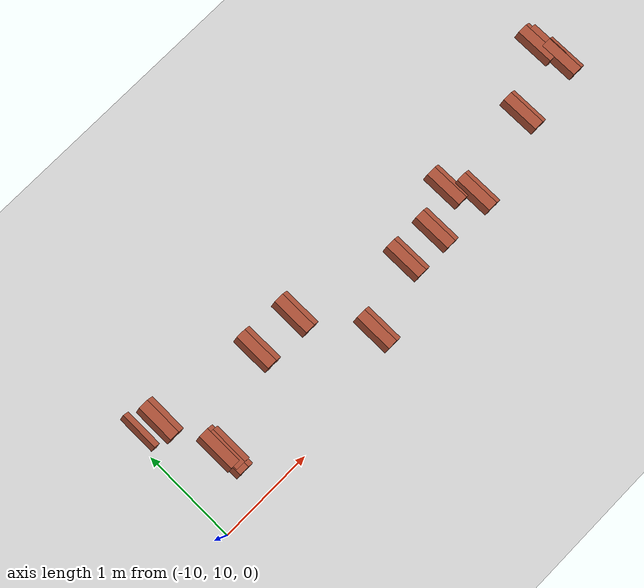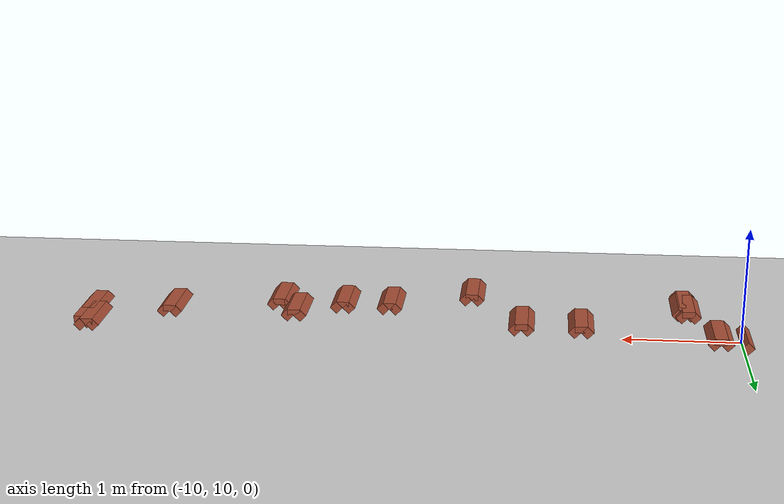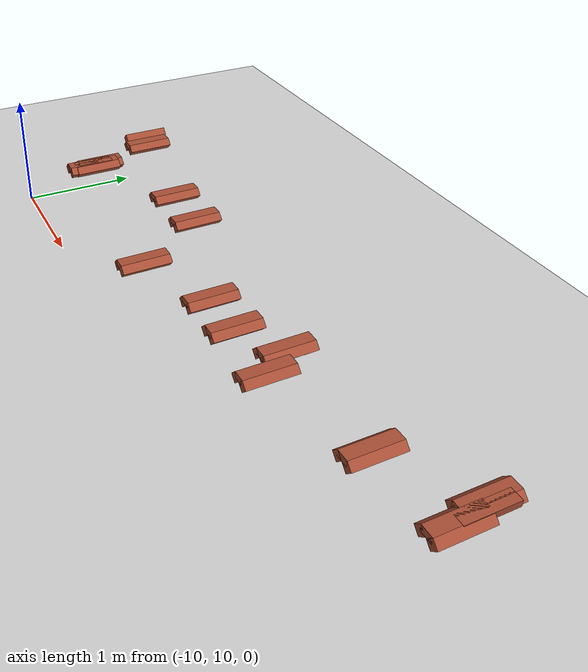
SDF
<sdf version="1.7">
 <world name="default">
  <model name="ground_plane">
   <static>1</static>
   <link name="link">
    <collision name="collision">
     <geometry><plane><normal>0 0 1</normal><size>100 100</size></plane></geometry>
     <surface><friction><ode><mu>100</mu><mu2>50</mu2></ode></friction></surface>
    </collision>
    <visual name="visual">
     <cast_shadows>0</cast_shadows>
     <geometry><plane><normal>0 0 1</normal><size>100 100</size></plane></geometry>
     <material>
      <script><uri>file://media/materials/scripts/gazebo.material</uri><name>Gazebo/Grey</name></script>
     </material>
    </visual>
   </link>
  </model>
  <model name="tumsek">
   <static>1</static>
   <pose>-5.17447 11.4027 0.5 0 -0 0</pose>
   <link name="tumsek_main_0">
    <pose>0.442808 -0.537221 0 0 -0 0</pose>
    <collision name="tumsek_Collision">
     <geometry><box><size>0.1 0.4 0.05</size></box></geometry>
     <pose>0 0 0.025 0 -0 0</pose>
    </collision>
    <visual name="tumsek_Visual">
     <pose>0 0 0.025 0 -0 0</pose>
     <geometry><box><size>0.1 0.4 0.05</size></box></geometry>
     <material>
      <script><uri>file://media/materials/scripts/gazebo.material</uri><name>Gazebo/Bricks</name></script>
      <ambient>1 1 1 1</ambient>
     </material>
     <meta><layer>0</layer></meta>
    </visual>
   </link>
   <link name="tumsek_front_0">
    <pose>0.492808 -0.537221 0 0 0.785 0</pose>
    <collision name="tumsek_Collision"><geometry><box><size>0.0707 0.4 0.0707</size></box></geometry></collision>
    <visual name="tumsek_Visual">
     <geometry><box><size>0.0707 0.4 0.0707</size></box></geometry>
     <material>
      <script><uri>file://media/materials/scripts/gazebo.material</uri><name>Gazebo/Bricks</name></script>
      <ambient>1 1 1 1</ambient>
     </material>
    </visual>
   </link>
   <link name="tumsek_back_0">
    <pose>0.392808 -0.537221 0 0 0.785 0</pose>
    <collision name="tumsek_Collision"><geometry><box><size>0.0707 0.4 0.0707</size></box></geometry></collision>
    <visual name="tumsek_Visual">
     <geometry><box><size>0.0707 0.4 0.0707</size></box></geometry>
     <material>
      <script><uri>file://media/materials/scripts/gazebo.material</uri><name>Gazebo/Bricks</name></script>
      <ambient>1 1 1 1</ambient>
     </material>
    </visual>
   </link>
   <link name="tumsek_main_1">
    <pose>-0.18536 -0.64129 0 0 -0 0</pose>
    <collision name="tumsek_Collision">
     <geometry><box><size>0.1 0.4 0.05</size></box></geometry>
     <pose>0 0 0.025 0 -0 0</pose>
    </collision>
    <visual name="tumsek_Visual">
     <pose>0 0 0.025 0 -0 0</pose>
     <geometry><box><size>0.1 0.4 0.05</size></box></geometry>
     <material>
      <script><uri>file://media/materials/scripts/gazebo.material</uri><name>Gazebo/Bricks</name></script>
      <ambient>1 1 1 1</ambient>
     </material>
     <meta><layer>0</layer></meta>
    </visual>
   </link>
   <link name="tumsek_front_1">
    <pose>-0.13536 -0.64129 0 0 0.785 0</pose>
    <collision name="tumsek_Collision"><geometry><box><size>0.0707 0.4 0.0707</size></box></geometry></collision>
    <visual name="tumsek_Visual">
     <geometry><box><size>0.0707 0.4 0.0707</size></box></geometry>
     <material>
      <script><uri>file://media/materials/scripts/gazebo.material</uri><name>Gazebo/Bricks</name></script>
      <ambient>1 1 1 1</ambient>
     </material>
    </visual>
   </link>
   <link name="tumsek_back_1">
    <pose>-0.23536 -0.64129 0 0 0.785 0</pose>
    <collision name="tumsek_Collision"><geometry><box><size>0.0707 0.4 0.0707</size></box></geometry></collision>
    <visual name="tumsek_Visual">
     <geometry><box><size>0.0707 0.4 0.0707</size></box></geometry>
     <material>
      <script><uri>file://media/materials/scripts/gazebo.material</uri><name>Gazebo/Bricks</name></script>
      <ambient>1 1 1 1</ambient>
     </material>
    </visual>
   </link>
   <link name="tumsek_main_3">
    <pose>-2.98653 -0.469523 0 0 -0 0</pose>
    <collision name="tumsek_Collision">
     <geometry><box><size>0.1 0.4 0.05</size></box></geometry>
     <pose>0 0 0.025 0 -0 0</pose>
    </collision>
    <visual name="tumsek_Visual">
     <pose>0 0 0.025 0 -0 0</pose>
     <geometry><box><size>0.1 0.4 0.05</size></box></geometry>
     <material>
      <script><uri>file://media/materials/scripts/gazebo.material</uri><name>Gazebo/Bricks</name></script>
      <ambient>1 1 1 1</ambient>
     </material>
     <meta><layer>0</layer></meta>
    </visual>
   </link>
   <link name="tumsek_front_3">
    <pose>-2.93654 -0.469523 0 0 0.785 0</pose>
    <collision name="tumsek_Collision"><geometry><box><size>0.0707 0.4 0.0707</size></box></geometry></collision>
    <visual name="tumsek_Visual">
     <geometry><box><size>0.0707 0.4 0.0707</size></box></geometry>
     <material>
      <script><uri>file://media/materials/scripts/gazebo.material</uri><name>Gazebo/Bricks</name></script>
      <ambient>1 1 1 1</ambient>
     </material>
    </visual>
   </link>
   <link name="tumsek_back_3">
    <pose>-3.03654 -0.469523 0 0 0.785 0</pose>
    <collision name="tumsek_Collision"><geometry><box><size>0.0707 0.4 0.0707</size></box></geometry></collision>
    <visual name="tumsek_Visual">
     <geometry><box><size>0.0707 0.4 0.0707</size></box></geometry>
     <material>
      <script><uri>file://media/materials/scripts/gazebo.material</uri><name>Gazebo/Bricks</name></script>
      <ambient>1 1 1 1</ambient>
     </material>
    </visual>
   </link>
   <link name="tumsek_main_18">
    <pose>-1.54985 -0.834055 0 0 -0 0</pose>
    <collision name="tumsek_Collision">
     <geometry><box><size>0.1 0.4 0.05</size></box></geometry>
     <pose>0 0 0.025 0 -0 0</pose>
    </collision>
    <visual name="tumsek_Visual">
     <pose>0 0 0.025 0 -0 0</pose>
     <geometry><box><size>0.1 0.4 0.05</size></box></geometry>
     <material>
      <script><uri>file://media/materials/scripts/gazebo.material</uri><name>Gazebo/Bricks</name></script>
      <ambient>1 1 1 1</ambient>
     </material>
     <meta><layer>0</layer></meta>
    </visual>
   </link>
   <link name="tumsek_front_18">
    <pose>-1.49985 -0.834055 0 0 0.785 0</pose>
    <collision name="tumsek_Collision"><geometry><box><size>0.0707 0.4 0.0707</size></box></geometry></collision>
    <visual name="tumsek_Visual">
     <geometry><box><size>0.0707 0.4 0.0707</size></box></geometry>
     <material>
      <script><uri>file://media/materials/scripts/gazebo.material</uri><name>Gazebo/Bricks</name></script>
      <ambient>1 1 1 1</ambient>
     </material>
    </visual>
   </link>
   <link name="tumsek_back_18">
    <pose>-1.59985 -0.834055 0 0 0.785 0</pose>
    <collision name="tumsek_Collision"><geometry><box><size>0.0707 0.4 0.0707</size></box></geometry></collision>
    <visual name="tumsek_Visual">
     <geometry><box><size>0.0707 0.4 0.0707</size></box></geometry>
     <material>
      <script><uri>file://media/materials/scripts/gazebo.material</uri><name>Gazebo/Bricks</name></script>
      <ambient>1 1 1 1</ambient>
     </material>
    </visual>
   </link>
   <link name="tumsek_main_29">
    <pose>-4.29326 -0.845961 0 0 -0 0</pose>
    <collision name="tumsek_Collision">
     <geometry><box><size>0.1 0.4 0.05</size></box></geometry>
     <pose>0 0 0.025 0 -0 0</pose>
    </collision>
    <visual name="tumsek_Visual">
     <pose>0 0 0.025 0 -0 0</pose>
     <geometry><box><size>0.1 0.4 0.05</size></box></geometry>
     <material>
      <script><uri>file://media/materials/scripts/gazebo.material</uri><name>Gazebo/Bricks</name></script>
      <ambient>1 1 1 1</ambient>
     </material>
     <meta><layer>0</layer></meta>
    </visual>
   </link>
   <link name="tumsek_front_29">
    <pose>-4.24326 -0.845961 0 0 0.785 0</pose>
    <collision name="tumsek_Collision"><geometry><box><size>0.0707 0.4 0.0707</size></box></geometry></collision>
    <visual name="tumsek_Visual">
     <geometry><box><size>0.0707 0.4 0.0707</size></box></geometry>
     <material>
      <script><uri>file://media/materials/scripts/gazebo.material</uri><name>Gazebo/Bricks</name></script>
      <ambient>1 1 1 1</ambient>
     </material>
    </visual>
   </link>
   <link name="tumsek_back_29">
    <pose>-4.34326 -0.845961 0 0 0.785 0</pose>
    <collision name="tumsek_Collision"><geometry><box><size>0.0707 0.4 0.0707</size></box></geometry></collision>
    <visual name="tumsek_Visual">
     <geometry><box><size>0.0707 0.4 0.0707</size></box></geometry>
     <material>
      <script><uri>file://media/materials/scripts/gazebo.material</uri><name>Gazebo/Bricks</name></script>
      <ambient>1 1 1 1</ambient>
     </material>
    </visual>
   </link>
   <link name="tumsek_main_30">
    <pose>-4.49216 -0.289121 0 0 -0 0</pose>
    <collision name="tumsek_Collision">
     <geometry><box><size>0.1 0.4 0.05</size></box></geometry>
     <pose>0 0 0.025 0 -0 0</pose>
    </collision>
    <visual name="tumsek_Visual">
     <pose>0 0 0.025 0 -0 0</pose>
     <geometry><box><size>0.1 0.4 0.05</size></box></geometry>
     <material>
      <script><uri>file://media/materials/scripts/gazebo.material</uri><name>Gazebo/Bricks</name></script>
      <ambient>1 1 1 1</ambient>
     </material>
     <meta><layer>0</layer></meta>
    </visual>
   </link>
   <link name="tumsek_front_30">
    <pose>-4.44216 -0.289121 0 0 0.785 0</pose>
    <collision name="tumsek_Collision"><geometry><box><size>0.0707 0.4 0.0707</size></box></geometry></collision>
    <visual name="tumsek_Visual">
     <geometry><box><size>0.0707 0.4 0.0707</size></box></geometry>
     <material>
      <script><uri>file://media/materials/scripts/gazebo.material</uri><name>Gazebo/Bricks</name></script>
      <ambient>1 1 1 1</ambient>
     </material>
    </visual>
   </link>
   <link name="tumsek_back_30">
    <pose>-4.54216 -0.289121 0 0 0.785 0</pose>
    <collision name="tumsek_Collision"><geometry><box><size>0.0707 0.4 0.0707</size></box></geometry></collision>
    <visual name="tumsek_Visual">
     <geometry><box><size>0.0707 0.4 0.0707</size></box></geometry>
     <material>
      <script><uri>file://media/materials/scripts/gazebo.material</uri><name>Gazebo/Bricks</name></script>
      <ambient>1 1 1 1</ambient>
     </material>
    </visual>
   </link>
   <link name="tumsek_main_31">
    <pose>-3.44699 -0.454906 0 0 -0 0</pose>
    <collision name="tumsek_Collision">
     <geometry><box><size>0.1 0.4 0.05</size></box></geometry>
     <pose>0 0 0.025 0 -0 0</pose>
    </collision>
    <visual name="tumsek_Visual">
     <pose>0 0 0.025 0 -0 0</pose>
     <geometry><box><size>0.1 0.4 0.05</size></box></geometry>
     <material>
      <script><uri>file://media/materials/scripts/gazebo.material</uri><name>Gazebo/Bricks</name></script>
      <ambient>1 1 1 1</ambient>
     </material>
     <meta><layer>0</layer></meta>
    </visual>
   </link>
   <link name="tumsek_front_31">
    <pose>-3.39699 -0.454906 0 0 0.785 0</pose>
    <collision name="tumsek_Collision"><geometry><box><size>0.0707 0.4 0.0707</size></box></geometry></collision>
    <visual name="tumsek_Visual">
     <geometry><box><size>0.0707 0.4 0.0707</size></box></geometry>
     <material>
      <script><uri>file://media/materials/scripts/gazebo.material</uri><name>Gazebo/Bricks</name></script>
      <ambient>1 1 1 1</ambient>
     </material>
    </visual>
   </link>
   <link name="tumsek_back_31">
    <pose>-3.49699 -0.454906 0 0 0.785 0</pose>
    <collision name="tumsek_Collision"><geometry><box><size>0.0707 0.4 0.0707</size></box></geometry></collision>
    <visual name="tumsek_Visual">
     <geometry><box><size>0.0707 0.4 0.0707</size></box></geometry>
     <material>
      <script><uri>file://media/materials/scripts/gazebo.material</uri><name>Gazebo/Bricks</name></script>
      <ambient>1 1 1 1</ambient>
     </material>
    </visual>
   </link>
   <link name="tumsek_back_36">
    <pose>-4.68445 -0.23491 0 0 0.785 0</pose>
    <collision name="tumsek_Collision"><geometry><box><size>0.0707 0.4 0.0707</size></box></geometry></collision>
    <visual name="tumsek_Visual">
     <geometry><box><size>0.0707 0.4 0.0707</size></box></geometry>
     <material>
      <script><uri>file://media/materials/scripts/gazebo.material</uri><name>Gazebo/Bricks</name></script>
      <ambient>1 1 1 1</ambient>
     </material>
    </visual>
   </link>
   <link name="tumsek_main_37">
    <pose>-1.18744 -0.629892 0 0 -0 0</pose>
    <collision name="tumsek_Collision">
     <geometry><box><size>0.1 0.4 0.05</size></box></geometry>
     <pose>0 0 0.025 0 -0 0</pose>
    </collision>
    <visual name="tumsek_Visual">
     <pose>0 0 0.025 0 -0 0</pose>
     <geometry><box><size>0.1 0.4 0.05</size></box></geometry>
     <material>
      <script><uri>file://media/materials/scripts/gazebo.material</uri><name>Gazebo/Bricks</name></script>
      <ambient>1 1 1 1</ambient>
     </material>
     <meta><layer>0</layer></meta>
    </visual>
   </link>
   <link name="tumsek_front_37">
    <pose>-1.13744 -0.629892 0 0 0.785 0</pose>
    <collision name="tumsek_Collision"><geometry><box><size>0.0707 0.4 0.0707</size></box></geometry></collision>
    <visual name="tumsek_Visual">
     <geometry><box><size>0.0707 0.4 0.0707</size></box></geometry>
     <material>
      <script><uri>file://media/materials/scripts/gazebo.material</uri><name>Gazebo/Bricks</name></script>
      <ambient>1 1 1 1</ambient>
     </material>
    </visual>
   </link>
   <link name="tumsek_back_37">
    <pose>-1.23744 -0.629892 0 0 0.785 0</pose>
    <collision name="tumsek_Collision"><geometry><box><size>0.0707 0.4 0.0707</size></box></geometry></collision>
    <visual name="tumsek_Visual">
     <geometry><box><size>0.0707 0.4 0.0707</size></box></geometry>
     <material>
      <script><uri>file://media/materials/scripts/gazebo.material</uri><name>Gazebo/Bricks</name></script>
      <ambient>1 1 1 1</ambient>
     </material>
    </visual>
   </link>
   <link name="tumsek_main_38">
    <pose>-1.9263 -0.833267 0 0 -0 0</pose>
    <collision name="tumsek_Collision">
     <geometry><box><size>0.1 0.4 0.05</size></box></geometry>
     <pose>0 0 0.025 0 -0 0</pose>
    </collision>
    <visual name="tumsek_Visual">
     <pose>0 0 0.025 0 -0 0</pose>
     <geometry><box><size>0.1 0.4 0.05</size></box></geometry>
     <material>
      <script><uri>file://media/materials/scripts/gazebo.material</uri><name>Gazebo/Bricks</name></script>
      <ambient>1 1 1 1</ambient>
     </material>
     <meta><layer>0</layer></meta>
    </visual>
   </link>
   <link name="tumsek_front_38">
    <pose>-1.8763 -0.833267 0 0 0.785 0</pose>
    <collision name="tumsek_Collision"><geometry><box><size>0.0707 0.4 0.0707</size></box></geometry></collision>
    <visual name="tumsek_Visual">
     <geometry><box><size>0.0707 0.4 0.0707</size></box></geometry>
     <material>
      <script><uri>file://media/materials/scripts/gazebo.material</uri><name>Gazebo/Bricks</name></script>
      <ambient>1 1 1 1</ambient>
     </material>
    </visual>
   </link>
   <link name="tumsek_back_38">
    <pose>-1.9763 -0.833267 0 0 0.785 0</pose>
    <collision name="tumsek_Collision"><geometry><box><size>0.0707 0.4 0.0707</size></box></geometry></collision>
    <visual name="tumsek_Visual">
     <geometry><box><size>0.0707 0.4 0.0707</size></box></geometry>
     <material>
      <script><uri>file://media/materials/scripts/gazebo.material</uri><name>Gazebo/Bricks</name></script>
      <ambient>1 1 1 1</ambient>
     </material>
    </visual>
   </link>
   <link name="tumsek_main_42">
    <pose>-4.27675 -0.941317 0 0 -0 0</pose>
    <collision name="tumsek_Collision">
     <geometry><box><size>0.1 0.4 0.05</size></box></geometry>
     <pose>0 0 0.025 0 -0 0</pose>
    </collision>
    <visual name="tumsek_Visual">
     <pose>0 0 0.025 0 -0 0</pose>
     <geometry><box><size>0.1 0.4 0.05</size></box></geometry>
     <material>
      <script><uri>file://media/materials/scripts/gazebo.material</uri><name>Gazebo/Bricks</name></script>
      <ambient>1 1 1 1</ambient>
     </material>
     <meta><layer>0</layer></meta>
    </visual>
   </link>
   <link name="tumsek_front_42">
    <pose>-4.22675 -0.941317 0 0 0.785 0</pose>
    <collision name="tumsek_Collision"><geometry><box><size>0.0707 0.4 0.0707</size></box></geometry></collision>
    <visual name="tumsek_Visual">
     <geometry><box><size>0.0707 0.4 0.0707</size></box></geometry>
     <material>
      <script><uri>file://media/materials/scripts/gazebo.material</uri><name>Gazebo/Bricks</name></script>
      <ambient>1 1 1 1</ambient>
     </material>
    </visual>
   </link>
   <link name="tumsek_back_42">
    <pose>-4.32674 -0.941317 0 0 0.785 0</pose>
    <collision name="tumsek_Collision"><geometry><box><size>0.0707 0.4 0.0707</size></box></geometry></collision>
    <visual name="tumsek_Visual">
     <geometry><box><size>0.0707 0.4 0.0707</size></box></geometry>
     <material>
      <script><uri>file://media/materials/scripts/gazebo.material</uri><name>Gazebo/Bricks</name></script>
      <ambient>1 1 1 1</ambient>
     </material>
    </visual>
   </link>
   <link name="tumsek_main_47">
    <pose>-4.26635 -0.88703 0 0 -0 0</pose>
    <collision name="tumsek_Collision">
     <geometry><box><size>0.1 0.4 0.05</size></box></geometry>
     <pose>0 0 0.025 0 -0 0</pose>
    </collision>
    <visual name="tumsek_Visual">
     <pose>0 0 0.025 0 -0 0</pose>
     <geometry><box><size>0.1 0.4 0.05</size></box></geometry>
     <material>
      <script><uri>file://media/materials/scripts/gazebo.material</uri><name>Gazebo/Bricks</name></script>
      <ambient>1 1 1 1</ambient>
     </material>
     <meta><layer>0</layer></meta>
    </visual>
   </link>
   <link name="tumsek_front_47">
    <pose>-4.21635 -0.88703 0 0 0.785 0</pose>
    <collision name="tumsek_Collision"><geometry><box><size>0.0707 0.4 0.0707</size></box></geometry></collision>
    <visual name="tumsek_Visual">
     <geometry><box><size>0.0707 0.4 0.0707</size></box></geometry>
     <material>
      <script><uri>file://media/materials/scripts/gazebo.material</uri><name>Gazebo/Bricks</name></script>
      <ambient>1 1 1 1</ambient>
     </material>
    </visual>
   </link>
   <link name="tumsek_back_47">
    <pose>-4.31635 -0.88703 0 0 0.785 0</pose>
    <collision name="tumsek_Collision"><geometry><box><size>0.0707 0.4 0.0707</size></box></geometry></collision>
    <visual name="tumsek_Visual">
     <geometry><box><size>0.0707 0.4 0.0707</size></box></geometry>
     <material>
      <script><uri>file://media/materials/scripts/gazebo.material</uri><name>Gazebo/Bricks</name></script>
      <ambient>1 1 1 1</ambient>
     </material>
    </visual>
   </link>
   <link name="tumsek_main_51">
    <pose>-1.03339 -0.862511 0 0 -0 0</pose>
    <collision name="tumsek_Collision">
     <geometry><box><size>0.1 0.4 0.05</size></box></geometry>
     <pose>0 0 0.025 0 -0 0</pose>
    </collision>
    <visual name="tumsek_Visual">
     <pose>0 0 0.025 0 -0 0</pose>
     <geometry><box><size>0.1 0.4 0.05</size></box></geometry>
     <material>
      <script><uri>file://media/materials/scripts/gazebo.material</uri><name>Gazebo/Bricks</name></script>
      <ambient>1 1 1 1</ambient>
     </material>
     <meta><layer>0</layer></meta>
    </visual>
   </link>
   <link name="tumsek_front_51">
    <pose>-0.983386 -0.862511 0 0 0.785 0</pose>
    <collision name="tumsek_Collision"><geometry><box><size>0.0707 0.4 0.0707</size></box></geometry></collision>
    <visual name="tumsek_Visual">
     <geometry><box><size>0.0707 0.4 0.0707</size></box></geometry>
     <material>
      <script><uri>file://media/materials/scripts/gazebo.material</uri><name>Gazebo/Bricks</name></script>
      <ambient>1 1 1 1</ambient>
     </material>
    </visual>
   </link>
   <link name="tumsek_back_51">
    <pose>-1.08339 -0.862511 0 0 0.785 0</pose>
    <collision name="tumsek_Collision"><geometry><box><size>0.0707 0.4 0.0707</size></box></geometry></collision>
    <visual name="tumsek_Visual">
     <geometry><box><size>0.0707 0.4 0.0707</size></box></geometry>
     <material>
      <script><uri>file://media/materials/scripts/gazebo.material</uri><name>Gazebo/Bricks</name></script>
      <ambient>1 1 1 1</ambient>
     </material>
    </visual>
   </link>
   <link name="tumsek_main_53">
    <pose>-2.5715 -1.09309 0 0 -0 0</pose>
    <collision name="tumsek_Collision">
     <geometry><box><size>0.1 0.4 0.05</size></box></geometry>
     <pose>0 0 0.025 0 -0 0</pose>
    </collision>
    <visual name="tumsek_Visual">
     <pose>0 0 0.025 0 -0 0</pose>
     <geometry><box><size>0.1 0.4 0.05</size></box></geometry>
     <material>
      <script><uri>file://media/materials/scripts/gazebo.material</uri><name>Gazebo/Bricks</name></script>
      <ambient>1 1 1 1</ambient>
     </material>
     <meta><layer>0</layer></meta>
    </visual>
   </link>
   <link name="tumsek_front_53">
    <pose>-2.5215 -1.09309 0 0 0.785 0</pose>
    <collision name="tumsek_Collision"><geometry><box><size>0.0707 0.4 0.0707</size></box></geometry></collision>
    <visual name="tumsek_Visual">
     <geometry><box><size>0.0707 0.4 0.0707</size></box></geometry>
     <material>
      <script><uri>file://media/materials/scripts/gazebo.material</uri><name>Gazebo/Bricks</name></script>
      <ambient>1 1 1 1</ambient>
     </material>
    </visual>
   </link>
   <link name="tumsek_back_53">
    <pose>-2.6215 -1.09309 0 0 0.785 0</pose>
    <collision name="tumsek_Collision"><geometry><box><size>0.0707 0.4 0.0707</size></box></geometry></collision>
    <visual name="tumsek_Visual">
     <geometry><box><size>0.0707 0.4 0.0707</size></box></geometry>
     <material>
      <script><uri>file://media/materials/scripts/gazebo.material</uri><name>Gazebo/Bricks</name></script>
      <ambient>1 1 1 1</ambient>
     </material>
    </visual>
   </link>
   <link name="tumsek_main_57">
    <pose>0.387212 -0.290584 0 0 -0 0</pose>
    <collision name="tumsek_Collision">
     <geometry><box><size>0.1 0.4 0.05</size></box></geometry>
     <pose>0 0 0.025 0 -0 0</pose>
    </collision>
    <visual name="tumsek_Visual">
     <pose>0 0 0.025 0 -0 0</pose>
     <geometry><box><size>0.1 0.4 0.05</size></box></geometry>
     <material>
      <script><uri>file://media/materials/scripts/gazebo.material</uri><name>Gazebo/Bricks</name></script>
      <ambient>1 1 1 1</ambient>
     </material>
     <meta><layer>0</layer></meta>
    </visual>
   </link>
   <link name="tumsek_front_57">
    <pose>0.437212 -0.290584 0 0 0.785 0</pose>
    <collision name="tumsek_Collision"><geometry><box><size>0.0707 0.4 0.0707</size></box></geometry></collision>
    <visual name="tumsek_Visual">
     <geometry><box><size>0.0707 0.4 0.0707</size></box></geometry>
     <material>
      <script><uri>file://media/materials/scripts/gazebo.material</uri><name>Gazebo/Bricks</name></script>
      <ambient>1 1 1 1</ambient>
     </material>
    </visual>
   </link>
   <link name="tumsek_back_57">
    <pose>0.337212 -0.290584 0 0 0.785 0</pose>
    <collision name="tumsek_Collision"><geometry><box><size>0.0707 0.4 0.0707</size></box></geometry></collision>
    <visual name="tumsek_Visual">
     <geometry><box><size>0.0707 0.4 0.0707</size></box></geometry>
     <material>
      <script><uri>file://media/materials/scripts/gazebo.material</uri><name>Gazebo/Bricks</name></script>
      <ambient>1 1 1 1</ambient>
     </material>
    </visual>
   </link>
   <link name="tumsek_main_59">
    <pose>0.448721 -0.345806 0 0 -0 0</pose>
    <collision name="tumsek_Collision">
     <geometry><box><size>0.1 0.4 0.05</size></box></geometry>
     <pose>0 0 0.025 0 -0 0</pose>
    </collision>
    <visual name="tumsek_Visual">
     <pose>0 0 0.025 0 -0 0</pose>
     <geometry><box><size>0.1 0.4 0.05</size></box></geometry>
     <material>
      <script><uri>file://media/materials/scripts/gazebo.material</uri><name>Gazebo/Bricks</name></script>
      <ambient>1 1 1 1</ambient>
     </material>
     <meta><layer>0</layer></meta>
    </visual>
   </link>
   <link name="tumsek_back_59">
    <pose>0.398721 -0.345806 0 0 0.785 0</pose>
    <collision name="tumsek_Collision"><geometry><box><size>0.0707 0.4 0.0707</size></box></geometry></collision>
    <visual name="tumsek_Visual">
     <geometry><box><size>0.0707 0.4 0.0707</size></box></geometry>
     <material>
      <script><uri>file://media/materials/scripts/gazebo.material</uri><name>Gazebo/Bricks</name></script>
      <ambient>1 1 1 1</ambient>
     </material>
    </visual>
   </link>
  </model>
 </world>
</sdf>
